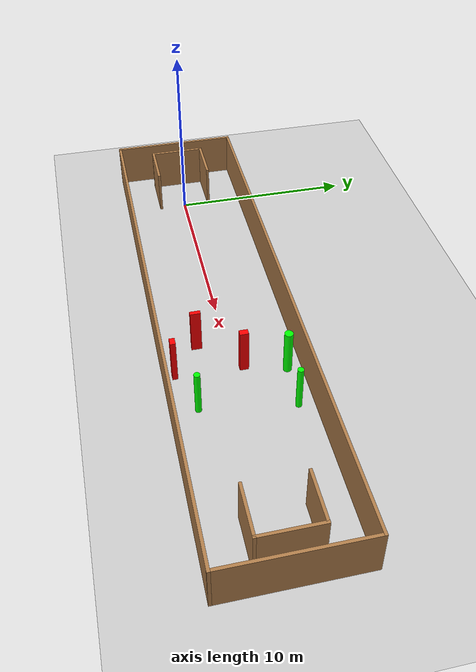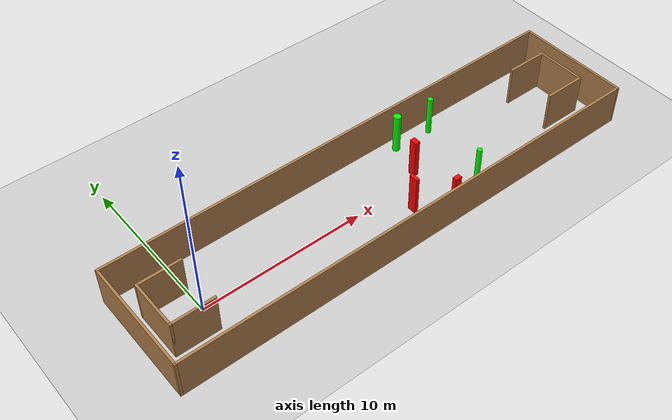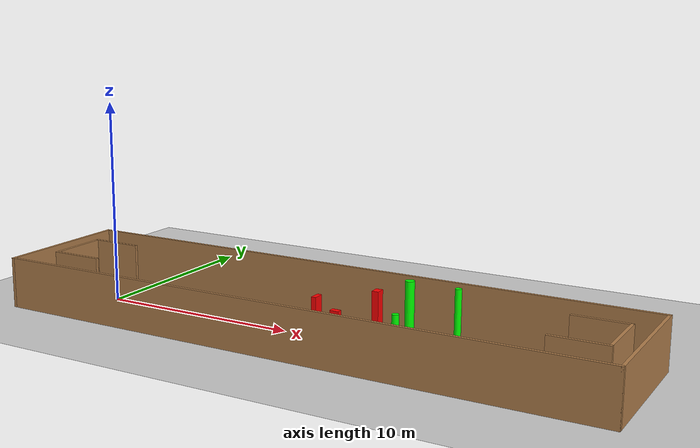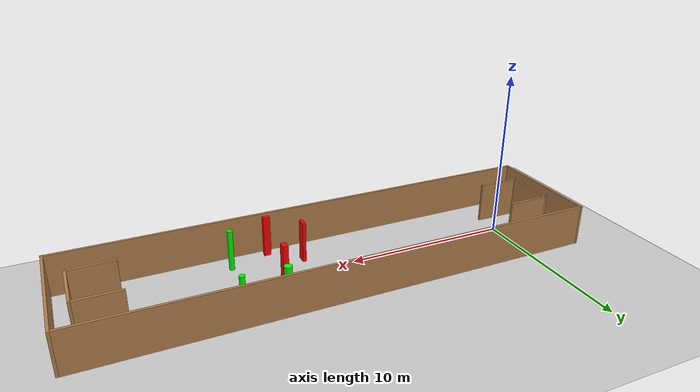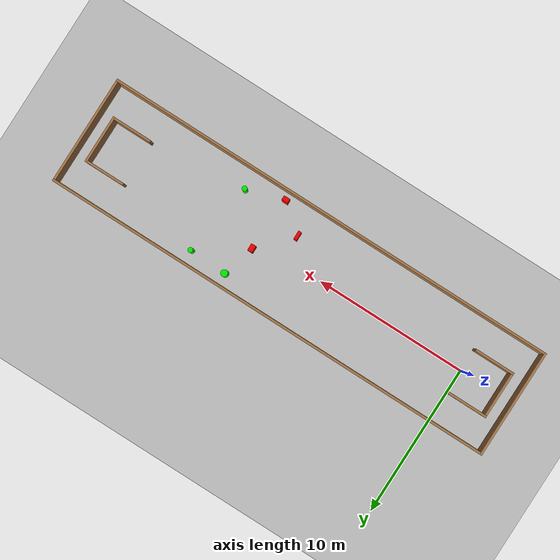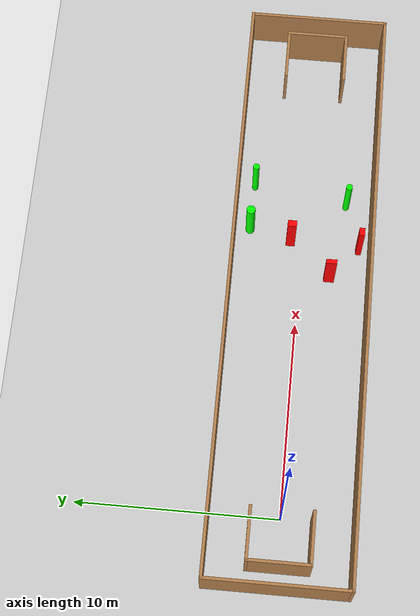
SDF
<sdf version="1.7">
 <world name="default">
  <light name="sun" type="directional">
   <pose>0 0 10 0 -0 0</pose>
   <diffuse>0.8 0.8 0.8 1</diffuse>
   <specular>0.2 0.2 0.2 1</specular>
   <attenuation>
    <range>1000</range>
    <constant>0.9</constant>
    <linear>0.01</linear>
    <quadratic>0.001</quadratic>
   </attenuation>
   <direction>-0.5 0.1 -0.9</direction>
   <spot><inner_angle>0</inner_angle><outer_angle>0</outer_angle><falloff>0</falloff></spot>
  </light>
  <model name="ground_plane">
   <static>1</static>
   <link name="link">
    <collision name="collision">
     <geometry><plane><normal>0 0 1</normal><size>100 100</size></plane></geometry>
     <surface>
      <contact><collide_bitmask>65535</collide_bitmask></contact>
      <friction><ode><mu>100</mu><mu2>50</mu2></ode></friction>
     </surface>
    </collision>
    <visual name="visual">
     <cast_shadows>0</cast_shadows>
     <geometry><plane><normal>0 0 1</normal><size>100 100</size></plane></geometry>
     <material>
      <script><uri>file://media/materials/scripts/gazebo.material</uri><name>Gazebo/Grey</name></script>
     </material>
    </visual>
   </link>
  </model>
  <gravity>0 0 -9.8</gravity>
  <magnetic_field>6e-06 2.3e-05 -4.2e-05</magnetic_field>
  <atmosphere type="adiabatic"/>
  <physics type="ode">
   <max_step_size>0.001</max_step_size>
   <real_time_factor>1</real_time_factor>
   <real_time_update_rate>1000</real_time_update_rate>
  </physics>
  <scene><ambient>0.4 0.4 0.4 1</ambient><background>0.7 0.7 0.7 1</background><shadows>1</shadows></scene>
  <spherical_coordinates>
   <surface_model>EARTH_WGS84</surface_model>
   <latitude_deg>0</latitude_deg>
   <longitude_deg>0</longitude_deg>
   <elevation>0</elevation>
   <heading_deg>0</heading_deg>
  </spherical_coordinates>
  <model name="my_base_walls">
   <link name="Wall_0">
    <collision name="Wall_0_Collision">
     <geometry><box><size>7.15 0.15 2.5</size></box></geometry>
     <pose>0 0 1.25 0 -0 0</pose>
    </collision>
    <visual name="Wall_0_Visual">
     <pose>0 0 1.25 0 -0 0</pose>
     <geometry><box><size>7.15 0.15 2.5</size></box></geometry>
     <material>
      <script><uri>file://media/materials/scripts/gazebo.material</uri><name>Gazebo/Wood</name></script>
      <ambient>1 1 1 1</ambient>
     </material>
     <meta><layer>0</layer></meta>
    </visual>
    <pose>-15 0 0 0 -0 1.5708</pose>
   </link>
   <link name="Wall_10">
    <collision name="Wall_10_Collision">
     <geometry><box><size>2.65 0.15 2.5</size></box></geometry>
     <pose>0 0 1.25 0 -0 0</pose>
    </collision>
    <visual name="Wall_10_Visual">
     <pose>0 0 1.25 0 -0 0</pose>
     <geometry><box><size>2.65 0.15 2.5</size></box></geometry>
     <material>
      <script><uri>file://media/materials/scripts/gazebo.material</uri><name>Gazebo/Wood</name></script>
      <ambient>1 1 1 1</ambient>
     </material>
     <meta><layer>0</layer></meta>
    </visual>
    <pose>-12.75 -1.5 0 0 -0 0</pose>
   </link>
   <link name="Wall_12">
    <collision name="Wall_12_Collision">
     <geometry><box><size>2.65 0.15 2.5</size></box></geometry>
     <pose>0 0 1.25 0 -0 0</pose>
    </collision>
    <visual name="Wall_12_Visual">
     <pose>0 0 1.25 0 -0 0</pose>
     <geometry><box><size>2.65 0.15 2.5</size></box></geometry>
     <material>
      <script><uri>file://media/materials/scripts/gazebo.material</uri><name>Gazebo/Wood</name></script>
      <ambient>1 1 1 1</ambient>
     </material>
     <meta><layer>0</layer></meta>
    </visual>
    <pose>-12.75 1.5 0 0 -0 0</pose>
   </link>
   <link name="Wall_14">
    <collision name="Wall_14_Collision">
     <geometry><box><size>3.15 0.15 2.5</size></box></geometry>
     <pose>0 0 1.25 0 -0 0</pose>
    </collision>
    <visual name="Wall_14_Visual">
     <pose>0 0 1.25 0 -0 0</pose>
     <geometry><box><size>3.15 0.15 2.5</size></box></geometry>
     <material>
      <script><uri>file://media/materials/scripts/gazebo.material</uri><name>Gazebo/Wood</name></script>
      <ambient>1 1 1 1</ambient>
     </material>
     <meta><layer>0</layer></meta>
    </visual>
    <pose>14 0 0 0 -0 -1.5708</pose>
   </link>
   <link name="Wall_15">
    <collision name="Wall_15_Collision">
     <geometry><box><size>2.65 0.15 2.5</size></box></geometry>
     <pose>0 0 1.25 0 -0 0</pose>
    </collision>
    <visual name="Wall_15_Visual">
     <pose>0 0 1.25 0 -0 0</pose>
     <geometry><box><size>2.65 0.15 2.5</size></box></geometry>
     <material>
      <script><uri>file://media/materials/scripts/gazebo.material</uri><name>Gazebo/Wood</name></script>
      <ambient>1 1 1 1</ambient>
     </material>
     <meta><layer>0</layer></meta>
    </visual>
    <pose>12.75 -1.5 0 0 -0 3.14159</pose>
   </link>
   <link name="Wall_17">
    <collision name="Wall_17_Collision">
     <geometry><box><size>2.65 0.15 2.5</size></box></geometry>
     <pose>0 0 1.25 0 -0 0</pose>
    </collision>
    <visual name="Wall_17_Visual">
     <pose>0 0 1.25 0 -0 0</pose>
     <geometry><box><size>2.65 0.15 2.5</size></box></geometry>
     <material>
      <script><uri>file://media/materials/scripts/gazebo.material</uri><name>Gazebo/Wood</name></script>
      <ambient>1 1 1 1</ambient>
     </material>
     <meta><layer>0</layer></meta>
    </visual>
    <pose>12.75 1.5 0 0 -0 3.14159</pose>
   </link>
   <link name="Wall_2">
    <collision name="Wall_2_Collision">
     <geometry><box><size>30.15 0.15 2.5</size></box></geometry>
     <pose>0 0 1.25 0 -0 0</pose>
    </collision>
    <visual name="Wall_2_Visual">
     <pose>0 0 1.25 0 -0 0</pose>
     <geometry><box><size>30.15 0.15 2.5</size></box></geometry>
     <material>
      <script><uri>file://media/materials/scripts/gazebo.material</uri><name>Gazebo/Wood</name></script>
      <ambient>1 1 1 1</ambient>
     </material>
     <meta><layer>0</layer></meta>
    </visual>
    <pose>-0 -3.5 0 0 -0 0</pose>
   </link>
   <link name="Wall_4">
    <collision name="Wall_4_Collision">
     <geometry><box><size>30.15 0.15 2.5</size></box></geometry>
     <pose>0 0 1.25 0 -0 0</pose>
    </collision>
    <visual name="Wall_4_Visual">
     <pose>0 0 1.25 0 -0 0</pose>
     <geometry><box><size>30.15 0.15 2.5</size></box></geometry>
     <material>
      <script><uri>file://media/materials/scripts/gazebo.material</uri><name>Gazebo/Wood</name></script>
      <ambient>1 1 1 1</ambient>
     </material>
     <meta><layer>0</layer></meta>
    </visual>
    <pose>-0 3.5 0 0 -0 0</pose>
   </link>
   <link name="Wall_6">
    <collision name="Wall_6_Collision">
     <geometry><box><size>7.15 0.15 2.5</size></box></geometry>
     <pose>0 0 1.25 0 -0 0</pose>
    </collision>
    <visual name="Wall_6_Visual">
     <pose>0 0 1.25 0 -0 0</pose>
     <geometry><box><size>7.15 0.15 2.5</size></box></geometry>
     <material>
      <script><uri>file://media/materials/scripts/gazebo.material</uri><name>Gazebo/Wood</name></script>
      <ambient>1 1 1 1</ambient>
     </material>
     <meta><layer>0</layer></meta>
    </visual>
    <pose>15 0 0 0 -0 -1.5708</pose>
   </link>
   <link name="Wall_9">
    <collision name="Wall_9_Collision">
     <geometry><box><size>3.15 0.15 2.5</size></box></geometry>
     <pose>0 0 1.25 0 -0 0</pose>
    </collision>
    <visual name="Wall_9_Visual">
     <pose>0 0 1.25 0 -0 0</pose>
     <geometry><box><size>3.15 0.15 2.5</size></box></geometry>
     <material>
      <script><uri>file://media/materials/scripts/gazebo.material</uri><name>Gazebo/Wood</name></script>
      <ambient>1 1 1 1</ambient>
     </material>
     <meta><layer>0</layer></meta>
    </visual>
    <pose>-14 0 0 0 -0 -1.5708</pose>
   </link>
   <static>1</static>
   <pose>11.5 0 0 0 -0 0</pose>
  </model>
  <model name="cylinder1">
   <static>1</static>
   <link name="link">
    <inertial>
     <mass>1</mass>
     <inertia><ixx>0.5</ixx><ixy>0</ixy><ixz>0</ixz><iyy>0.5</iyy><iyz>0</iyz><izz>1</izz></inertia>
    </inertial>
    <collision name="collision">
     <geometry><cylinder><radius>0.1581295448530646</radius><length>2.5</length></cylinder></geometry>
    </collision>
    <visual name="visual">
     <geometry><cylinder><radius>0.1581295448530646</radius><length>2.5</length></cylinder></geometry>
     <material>
      <ambient>0 1 0 1</ambient>
      <diffuse>0 1 0 1</diffuse>
      <specular>0.1 0.1 0.1 1</specular>
      <emissive>0 0 0 0</emissive>
     </material>
    </visual>
   </link>
   <pose>17.48452847859613 2.618981880887584 1.25 0 0 0</pose>
  </model>
  <model name="cylinder2">
   <static>1</static>
   <link name="link">
    <inertial>
     <mass>1</mass>
     <inertia><ixx>0.5</ixx><ixy>0</ixy><ixz>0</ixz><iyy>0.5</iyy><iyz>0</iyz><izz>1</izz></inertia>
    </inertial>
    <collision name="collision">
     <geometry><cylinder><radius>0.15979013741770628</radius><length>2.5</length></cylinder></geometry>
    </collision>
    <visual name="visual">
     <geometry><cylinder><radius>0.15979013741770628</radius><length>2.5</length></cylinder></geometry>
     <material>
      <ambient>0 1 0 1</ambient>
      <diffuse>0 1 0 1</diffuse>
      <specular>0.1 0.1 0.1 1</specular>
      <emissive>0 0 0 0</emissive>
     </material>
    </visual>
   </link>
   <pose>16.744765099162763 -2.1677037874710603 1.25 0 0 0</pose>
  </model>
  <model name="cylinder3">
   <static>1</static>
   <link name="link">
    <inertial>
     <mass>1</mass>
     <inertia><ixx>0.5</ixx><ixy>0</ixy><ixz>0</ixz><iyy>0.5</iyy><iyz>0</iyz><izz>1</izz></inertia>
    </inertial>
    <collision name="collision">
     <geometry><cylinder><radius>0.2231919274612044</radius><length>2.5</length></cylinder></geometry>
    </collision>
    <visual name="visual">
     <geometry><cylinder><radius>0.2231919274612044</radius><length>2.5</length></cylinder></geometry>
     <material>
      <ambient>0 1 0 1</ambient>
      <diffuse>0 1 0 1</diffuse>
      <specular>0.1 0.1 0.1 1</specular>
      <emissive>0 0 0 0</emissive>
     </material>
    </visual>
   </link>
   <pose>15.06137744364485 2.697436276863579 1.25 0 0 0</pose>
  </model>
  <model name="box1">
   <static>1</static>
   <link name="link">
    <inertial>
     <mass>1</mass>
     <inertia><ixx>0.083</ixx><ixy>0</ixy><ixz>0</ixz><iyy>0.083</iyy><iyz>0</iyz><izz>0.083</izz></inertia>
    </inertial>
    <collision name="collision">
     <geometry><box><size>0.4076034296096005 0.27740175921432925 2.5</size></box></geometry>
    </collision>
    <visual name="visual">
     <geometry><box><size>0.4076034296096005 0.27740175921432925 2.5</size></box></geometry>
     <material>
      <ambient>1 0 0 1</ambient>
      <diffuse>1 0 0 1</diffuse>
      <specular>0.1 0.1 0.1 1</specular>
      <emissive>0 0 0 0</emissive>
     </material>
    </visual>
    <sensor name="my_contact" type="contact">
     <contact><collision>box_collision</collision><topic>__default_topic__</topic></contact>
    </sensor>
   </link>
   <pose>14.342322682318514 -2.942470659580595 1.25 0 0 0</pose>
  </model>
  <model name="box2">
   <static>1</static>
   <link name="link">
    <inertial>
     <mass>1</mass>
     <inertia><ixx>0.083</ixx><ixy>0</ixy><ixz>0</ixz><iyy>0.083</iyy><iyz>0</iyz><izz>0.083</izz></inertia>
    </inertial>
    <collision name="collision">
     <geometry><box><size>0.3196315287102512 0.4543095656807814 2.5</size></box></geometry>
    </collision>
    <visual name="visual">
     <geometry><box><size>0.3196315287102512 0.4543095656807814 2.5</size></box></geometry>
     <material>
      <ambient>1 0 0 1</ambient>
      <diffuse>1 0 0 1</diffuse>
      <specular>0.1 0.1 0.1 1</specular>
      <emissive>0 0 0 0</emissive>
     </material>
    </visual>
    <sensor name="my_contact" type="contact">
     <contact><collision>box_collision</collision><topic>__default_topic__</topic></contact>
    </sensor>
   </link>
   <pose>14.488332072871897 0.567828680120722 1.25 0 0 0</pose>
  </model>
  <model name="box3">
   <static>1</static>
   <link name="link">
    <inertial>
     <mass>1</mass>
     <inertia><ixx>0.083</ixx><ixy>0</ixy><ixz>0</ixz><iyy>0.083</iyy><iyz>0</iyz><izz>0.083</izz></inertia>
    </inertial>
    <collision name="collision">
     <geometry><box><size>0.21391259808898486 0.5424232896989822 2.5</size></box></geometry>
    </collision>
    <visual name="visual">
     <geometry><box><size>0.21391259808898486 0.5424232896989822 2.5</size></box></geometry>
     <material>
      <ambient>1 0 0 1</ambient>
      <diffuse>1 0 0 1</diffuse>
      <specular>0.1 0.1 0.1 1</specular>
      <emissive>0 0 0 0</emissive>
     </material>
    </visual>
    <sensor name="my_contact" type="contact">
     <contact><collision>box_collision</collision><topic>__default_topic__</topic></contact>
    </sensor>
   </link>
   <pose>12.600644812941434 -1.5200403370263746 1.25 0 0 0</pose>
  </model>
 </world>
</sdf>
